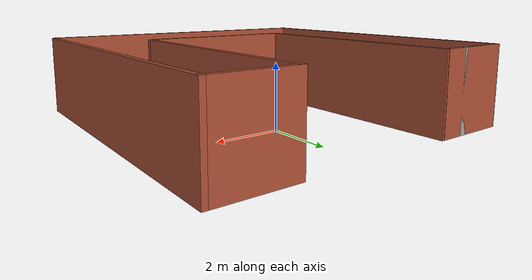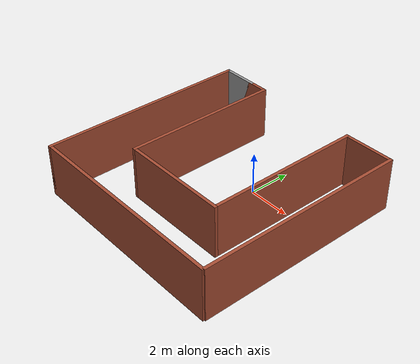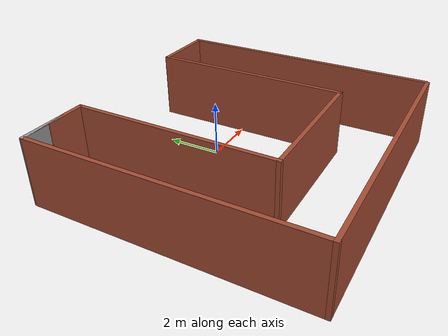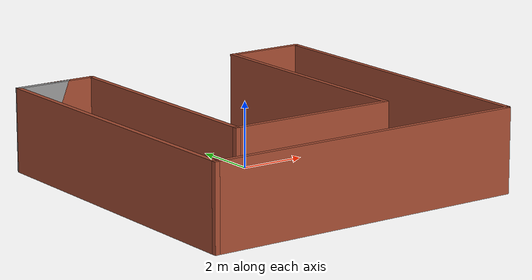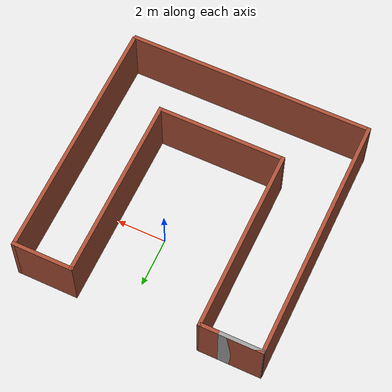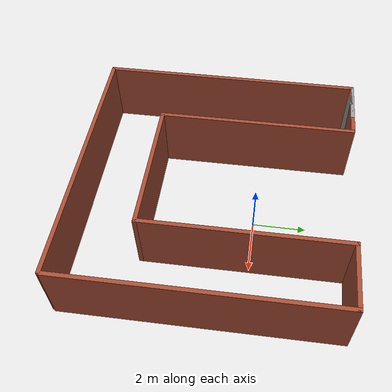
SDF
<?xml version='1.0'?>
<sdf version='1.6'>
  <model name='u-space'>
    <pose frame=''>-0.558 -1.514 0 0 -0 0</pose>
    <link name='Wall_10'>
      <collision name='Wall_10_Collision'>
        <geometry>
          <box>
            <size>10 0.15 2.5</size>
          </box>
        </geometry>
        <pose frame=''>0 0 1.25 0 -0 0</pose>
      </collision>
      <visual name='Wall_10_Visual'>
        <pose frame=''>0 0 1.25 0 -0 0</pose>
        <geometry>
          <box>
            <size>10 0.15 2.5</size>
          </box>
        </geometry>
        <material>
          <script>
            <uri>file://media/materials/scripts/gazebo.material</uri>
            <name>Gazebo/Bricks</name>
          </script>
          <ambient>0.435294 0.796078 0.67451 1</ambient>
        </material>
        <meta>
          <layer>0</layer>
        </meta>
      </visual>
      <pose frame=''>-4.952 -0.041 0 0 -0 1.5708</pose>
    </link>
    <link name='Wall_12'>
      <collision name='Wall_12_Collision'>
        <geometry>
          <box>
            <size>10 0.15 2.5</size>
          </box>
        </geometry>
        <pose frame=''>0 0 1.25 0 -0 0</pose>
      </collision>
      <visual name='Wall_12_Visual'>
        <pose frame=''>0 0 1.25 0 -0 0</pose>
        <geometry>
          <box>
            <size>10 0.15 2.5</size>
          </box>
        </geometry>
        <material>
          <script>
            <uri>file://media/materials/scripts/gazebo.material</uri>
            <name>Gazebo/Bricks</name>
          </script>
          <ambient>0.435294 0.796078 0.67451 1</ambient>
        </material>
        <meta>
          <layer>0</layer>
        </meta>
      </visual>
      <pose frame=''>-0.027 -4.966 0 0 -0 0</pose>
    </link>
    <link name='Wall_15'>
      <collision name='Wall_15_Collision'>
        <geometry>
          <box>
            <size>10 0.15 2.5</size>
          </box>
        </geometry>
        <pose frame=''>0 0 1.25 0 -0 0</pose>
      </collision>
      <visual name='Wall_15_Visual'>
        <pose frame=''>0 0 1.25 0 -0 0</pose>
        <geometry>
          <box>
            <size>10 0.15 2.5</size>
          </box>
        </geometry>
        <material>
          <script>
            <uri>file://media/materials/scripts/gazebo.material</uri>
            <name>Gazebo/Bricks</name>
          </script>
          <ambient>0.435294 0.796078 0.67451 1</ambient>
        </material>
        <meta>
          <layer>0</layer>
        </meta>
      </visual>
      <pose frame=''>4.952 0.041 0 0 0 -1.5708</pose>
    </link>
    <link name='Wall_18'>
      <collision name='Wall_18_Collision'>
        <geometry>
          <box>
            <size>2.5 0.15 2.5</size>
          </box>
        </geometry>
        <pose frame=''>0 0 1.25 0 -0 0</pose>
      </collision>
      <visual name='Wall_18_Visual'>
        <pose frame=''>0 0 1.25 0 -0 0</pose>
        <geometry>
          <box>
            <size>2.5 0.15 2.5</size>
          </box>
        </geometry>
        <material>
          <script>
            <uri>file://media/materials/scripts/gazebo.material</uri>
            <name>Gazebo/Bricks</name>
          </script>
          <ambient>0.435294 0.796078 0.67451 1</ambient>
        </material>
        <meta>
          <layer>0</layer>
        </meta>
      </visual>
      <pose frame=''>-3.74444 4.9428 0 0 -0 3.14159</pose>
    </link>
    <link name='Wall_19'>
      <collision name='Wall_19_Collision'>
        <geometry>
          <box>
            <size>1.762 0.15 2.5</size>
          </box>
        </geometry>
        <pose frame=''>0 0 1.25 0 -0 0</pose>
      </collision>
      <visual name='Wall_19_Visual'>
        <pose frame=''>0 0 1.25 0 -0 0</pose>
        <geometry>
          <box>
            <size>1.762 0.15 2.5</size>
          </box>
        </geometry>
        <material>
          <script>
            <uri>file://media/materials/scripts/gazebo.material</uri>
            <name>Gazebo/Grey</name>
          </script>
          <ambient>1 1 1 1</ambient>
        </material>
        <meta>
          <layer>0</layer>
        </meta>
      </visual>
      <pose frame=''>-4.13644 4.9428 0 0 -0 0</pose>
    </link>
    <link name='Wall_21'>
      <collision name='Wall_21_Collision'>
        <geometry>
          <box>
            <size>2.5 0.15 2.5</size>
          </box>
        </geometry>
        <pose frame=''>0 0 1.25 0 -0 0</pose>
      </collision>
      <visual name='Wall_21_Visual'>
        <pose frame=''>0 0 1.25 0 -0 0</pose>
        <geometry>
          <box>
            <size>2.5 0.15 2.5</size>
          </box>
        </geometry>
        <material>
          <script>
            <uri>file://media/materials/scripts/gazebo.material</uri>
            <name>Gazebo/Bricks</name>
          </script>
          <ambient>0.435294 0.796078 0.67451 1</ambient>
        </material>
        <meta>
          <layer>0</layer>
        </meta>
      </visual>
      <pose frame=''>3.777 4.966 0 0 -0 3.14159</pose>
    </link>
    <link name='Wall_23'>
      <collision name='Wall_23_Collision'>
        <geometry>
          <box>
            <size>7.5 0.15 2.5</size>
          </box>
        </geometry>
        <pose frame=''>0 0 1.25 0 -0 0</pose>
      </collision>
      <visual name='Wall_23_Visual'>
        <pose frame=''>0 0 1.25 0 -0 0</pose>
        <geometry>
          <box>
            <size>7.5 0.15 2.5</size>
          </box>
        </geometry>
        <material>
          <script>
            <uri>file://media/materials/scripts/gazebo.material</uri>
            <name>Gazebo/Bricks</name>
          </script>
          <ambient>0.435294 0.796078 0.67451 1</ambient>
        </material>
        <meta>
          <layer>0</layer>
        </meta>
      </visual>
      <pose frame=''>-2.50022 1.2579 0 0 -0 1.57086</pose>
    </link>
    <link name='Wall_29'>
      <collision name='Wall_29_Collision'>
        <geometry>
          <box>
            <size>7.533 0.15 2.5</size>
          </box>
        </geometry>
        <pose frame=''>0 0 1.25 0 -0 0</pose>
      </collision>
      <visual name='Wall_29_Visual'>
        <pose frame=''>0 0 1.25 0 -0 0</pose>
        <geometry>
          <box>
            <size>7.533 0.15 2.5</size>
          </box>
        </geometry>
        <material>
          <script>
            <uri>file://media/materials/scripts/gazebo.material</uri>
            <name>Gazebo/Bricks</name>
          </script>
          <ambient>0.435294 0.796078 0.67451 1</ambient>
        </material>
        <meta>
          <layer>0</layer>
        </meta>
      </visual>
      <pose frame=''>2.602 1.2745 0 0 -0 1.5708</pose>
    </link>
    <link name='Wall_31'>
      <collision name='Wall_31_Collision'>
        <geometry>
          <box>
            <size>5.25249 0.15 2.5</size>
          </box>
        </geometry>
        <pose frame=''>0 0 1.25 0 -0 0</pose>
      </collision>
      <visual name='Wall_31_Visual'>
        <pose frame=''>0 0 1.25 0 -0 0</pose>
        <geometry>
          <box>
            <size>5.25249 0.15 2.5</size>
          </box>
        </geometry>
        <material>
          <script>
            <uri>file://media/materials/scripts/gazebo.material</uri>
            <name>Gazebo/Bricks</name>
          </script>
          <ambient>0.435294 0.796078 0.67451 1</ambient>
        </material>
        <meta>
          <layer>0</layer>
        </meta>
      </visual>
      <pose frame=''>0.051 -2.417 0 0 -0 3.14159</pose>
    </link>
    <static>1</static>
  </model>
</sdf>
